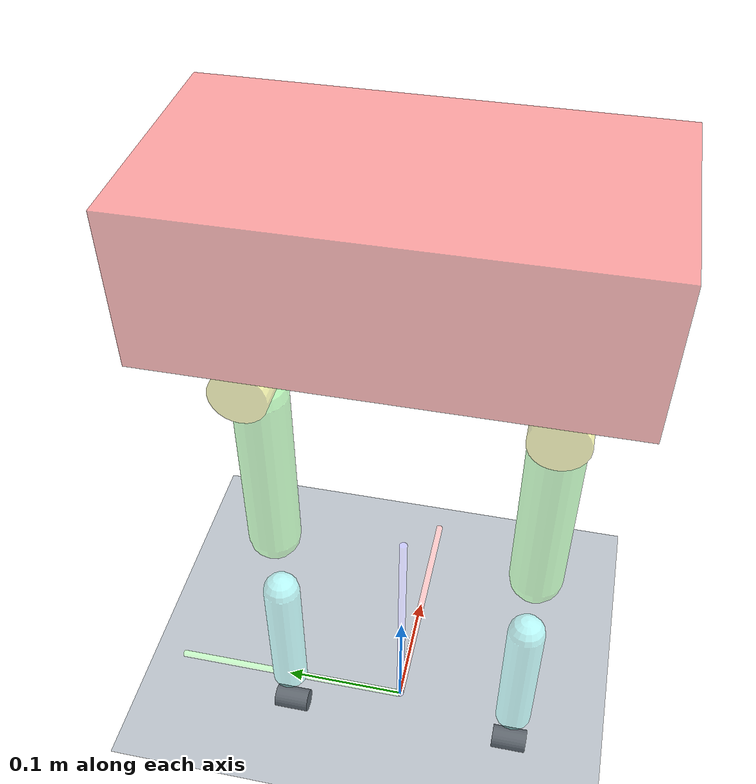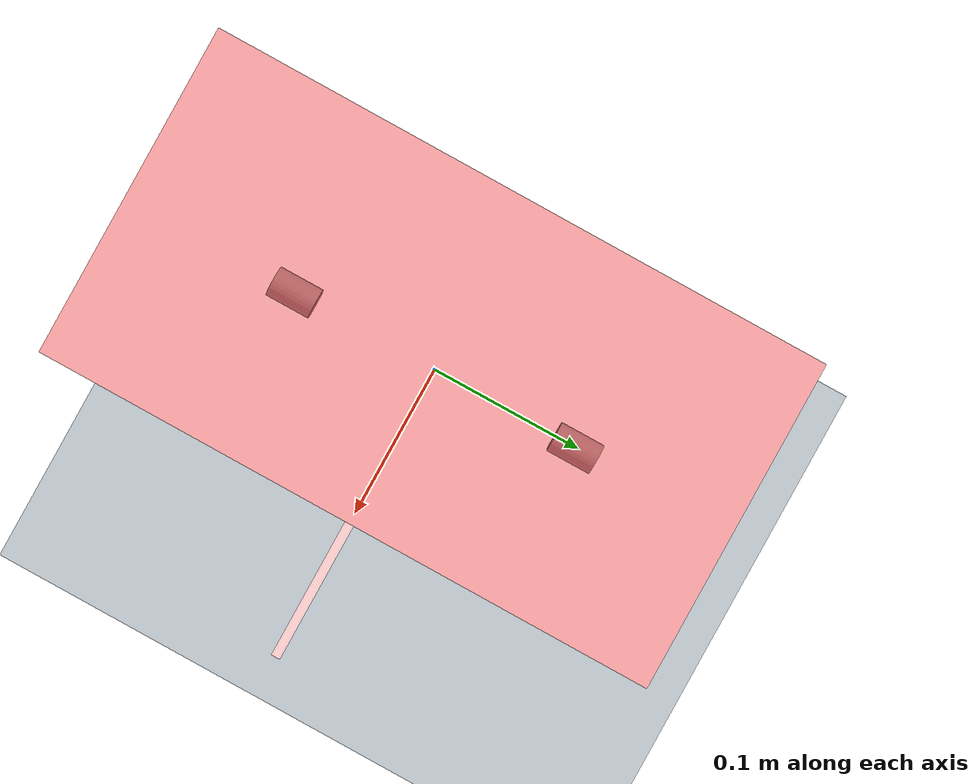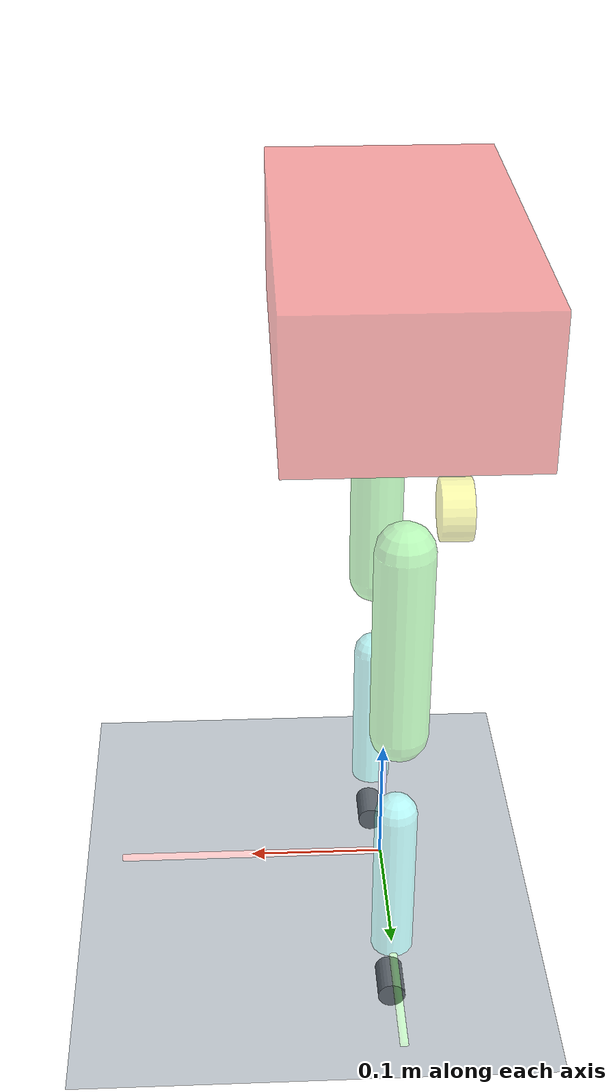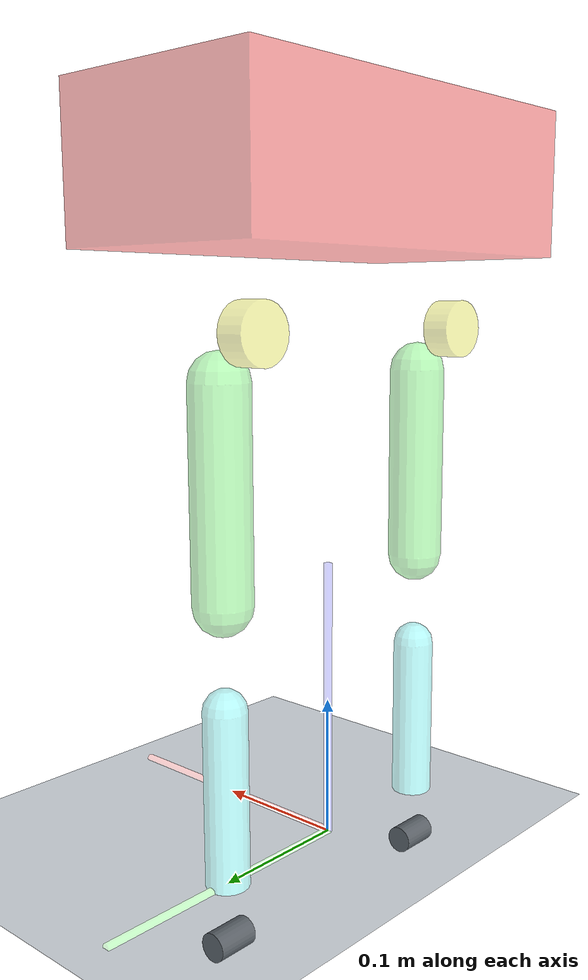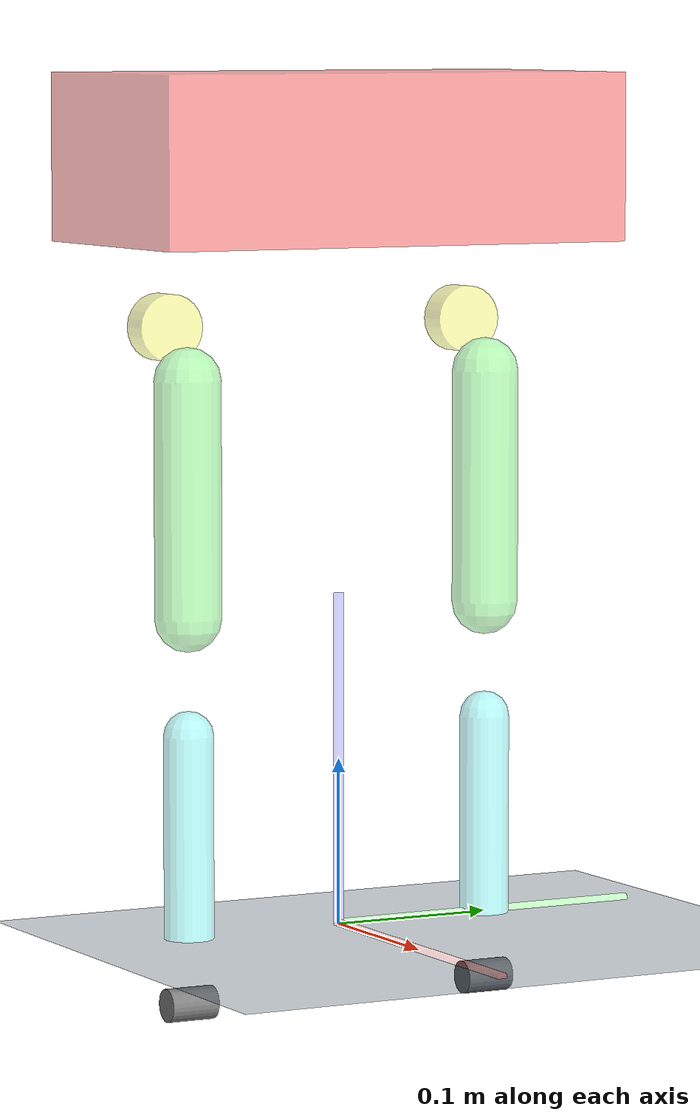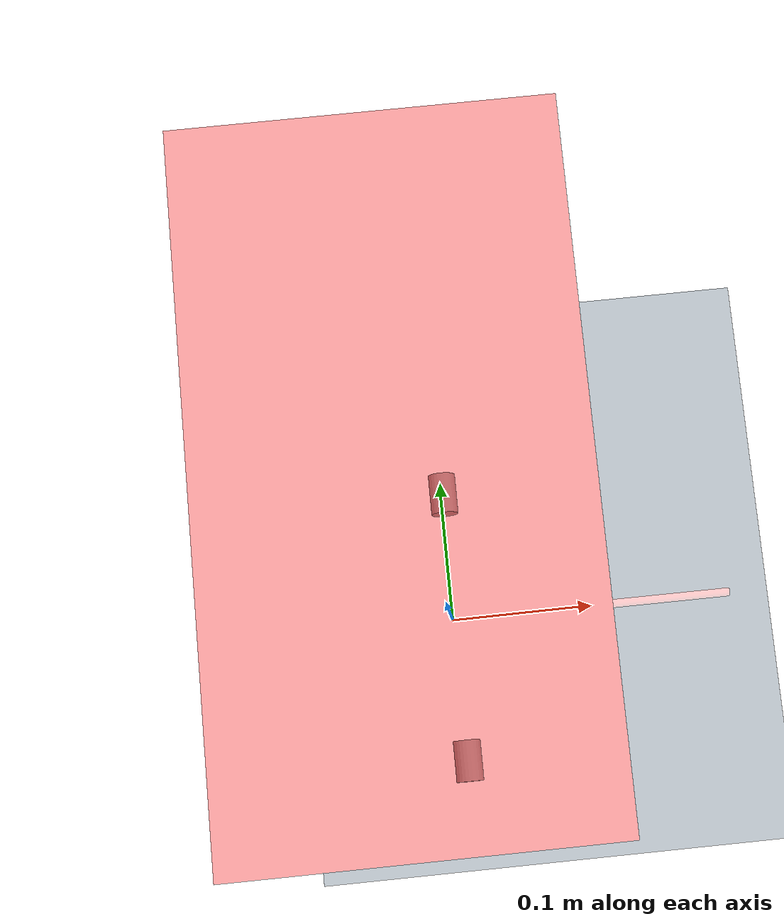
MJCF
<!-- ========= ***doc description @ yyp*** ==========
单腿6 dof
默认角度单位为360角度
===================================================== -->

<mujoco model="nabo_pointfoot">
	<option timestep="0.001" gravity="0 0 -10" />

	<include file="./assets/common.xml"/>

	<include file="./assets/world_axes.xml"/>

	<default>
		<!-- 实测这个限制是软的，有点像kp系数在限制驱动 -->
		<joint damping=".03" frictionloss="0.2" range="-45 45" />
		<motor ctrlrange="-50 50" ctrllimited="true" />
	</default>

	<worldbody>

		<light pos="0 0 3" dir="0 0 -1" directional="true" castshadow="false"/>
		<geom name="floor" size="0 0 0.01" type="plane" material="groundplane" />

		<body name="rbt" pos="0 0 0.46" euler="0 0 0">

			<!-- 悬空吊起需注释下面一行 -->
			<freejoint />

			<geom name="torso" type="box" mass="10" size="0.08 0.15 0.05" rgba="1 0.3 0.3 0.5"
				contype="0" conaffinity="0" />

			<!-- 右腿 -->
			<body pos="0 -0.1 -0.1">
				<body>
					<!-- 臀部Roll关节 -->
					<joint name="rightHipRol" axis="1 0 0" />
					<!-- 臀部 无碰撞 -->
					<geom name="rightHip" type="cylinder" mass="0.35" size="0.02 0.01 "
						euler="0 90 0"
						pos="-0.03 0 0" rgba="1 1 0.4 0.5" contype="0" conaffinity="0" />
					<body>
						<!-- 臀部Pitch关节 -->
						<joint name="rightHipPit" axis="0 1 0" range="-60 20" />
						<!-- 大腿 无碰撞 -->
						<geom name="rightThigh" type="capsule" mass="0.1" size="0.02"
							fromto="0 0 -0.03 0 0 -0.17"
							rgba="0.5 1 0.5 0.5" contype="0" conaffinity="0" />
						<body pos="0 0 -0.2">
							<!-- 膝关节 -->
							<joint name="rightKnee" axis="0 1 0" range="0 160" />
							<!-- 小腿 无碰撞 -->
							<geom name="rightShank" type="capsule" mass="0.1" size="0.015"
								fromto="0 0 -0.04 0 0 -0.16"
								rgba="0.5 1 1 0.5" contype="0" conaffinity="0" />
							<body pos="0 0 -0.2">
								<!-- 点足球形jio 有碰撞-->
								<geom name="rightPointFoot" type="cylinder" mass="0.1" size="0.01 0.015" euler="90 0 90" rgba="0.5 0.5 0.5 1" friction="1 1 1"/>
								<!-- 实测用球形轻质脚的话穿模比较严重 -->
							</body>
						</body>
					</body>
				</body>
			</body>

			<!-- 左腿 -->
			<body pos="0 0.1 -0.1">
				<body>
					<!-- 臀部Roll关节 -->
					<joint name="leftHipRol" axis="1 0 0" />
					<!-- 臀部 无碰撞 -->
					<geom name="leftHip" type="cylinder" mass="0.35" size="0.02 0.01 "
						euler="0 90 0"
						pos="-0.03 0 0" rgba="1 1 0.4 0.5" contype="0" conaffinity="0" />
					<body>
						<!-- 臀部Pitch关节 -->
						<joint name="leftHipPit" axis="0 1 0" range="-60 20" />
						<!-- 大腿 无碰撞 -->
						<geom name="lightThigh" type="capsule" mass="0.1" size="0.02"
							fromto="0 0 -0.03 0 0 -0.17"
							rgba="0.5 1 0.5 0.5" contype="0" conaffinity="0" />
						<body pos="0 0 -0.2">
							<!-- 膝关节 -->
							<joint name="leftKnee" axis="0 1 0" range="0 160" />
							<!-- 小腿 无碰撞 -->
							<geom name="leftShank" type="capsule" mass="0.1" size="0.015"
								fromto="0 0 -0.04 0 0 -0.16"
								rgba="0.5 1 1 0.5" contype="0" conaffinity="0" />
							<body pos="0 0 -0.2">
								<!-- 点足球形jio 有碰撞-->
								<geom name="leftPointFoot" type="cylinder" mass="0.1" size="0.01 0.015" euler="90 0 90" rgba="0.5 0.5 0.5 1" friction="1 1 1"/>
								<!-- 实测用球形轻质脚的话穿模比较严重 -->
							</body>
						</body>
					</body>
				</body>
			</body>
		</body>
	</worldbody>

	<actuator>
		<motor name="mt0" joint="rightHipRol" />
		<motor name="mt1" joint="rightHipPit" />
		<motor name="mt2" joint="rightKnee" />

		<motor name="mt3" joint="leftHipRol" />
		<motor name="mt4" joint="leftHipPit" />
		<motor name="mt5" joint="leftKnee" />
	</actuator>

</mujoco>

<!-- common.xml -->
<mujoco>

    <asset>
        <texture type="skybox" builtin="gradient" rgb1="0.3 0.5 0.7" rgb2="0 0 0" width="512"
                height="3072" />
        <texture type="2d" name="groundplane" builtin="checker" mark="edge" rgb1="0.2 0.3 0.4"
                rgb2="0.1 0.2 0.3" markrgb="0.8 0.8 0.8" width="300" height="300" />
        <material name="groundplane" texture="groundplane" texuniform="true" texrepeat="5 5"
                reflectance="0.2" />
    </asset>

    <visual>
            <headlight diffuse="0.6 0.6 0.6" ambient="0.3 0.3 0.3" specular="0 0 0" />
            <rgba haze="0.15 0.25 0.35 1" />
            <global azimuth="160" elevation="-20" />
    </visual>

  </mujoco>

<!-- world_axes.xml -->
<mujoco>

    <worldbody>
        <body name="world_axes" pos="0 0 0">
            <!-- x轴箭头 -->
                <geom type="cylinder" pos="0.1 0 0" euler="0 90 0" size="0.003 0.1" rgba="1 0 0 0.2" contype="0" conaffinity="0"/>

            <!-- y轴箭头 -->
                <geom type="cylinder" pos="0 0.1 0" euler="90 0 0" size="0.003 0.1" rgba="0 1 0 0.2" contype="0" conaffinity="0"/>

            <!-- z轴箭头 -->
                <geom type="cylinder" pos="0 0 0.1" euler="0 0 0" size="0.003 0.1" rgba="0 0 1 0.2" contype="0" conaffinity="0"/>
            </body>

    </worldbody>

 </mujoco>
